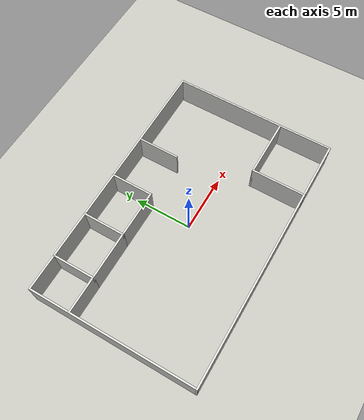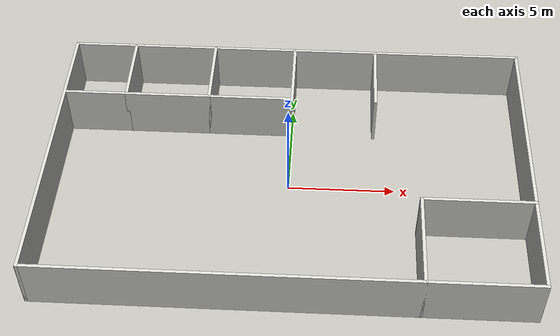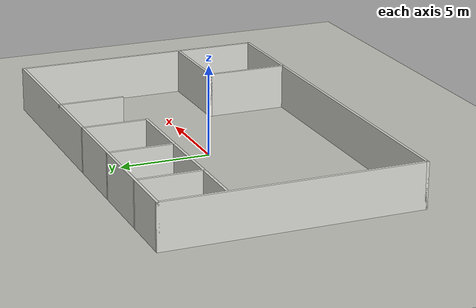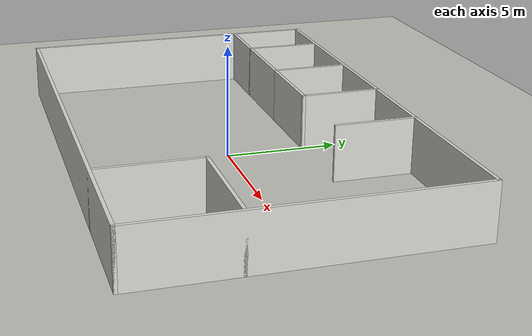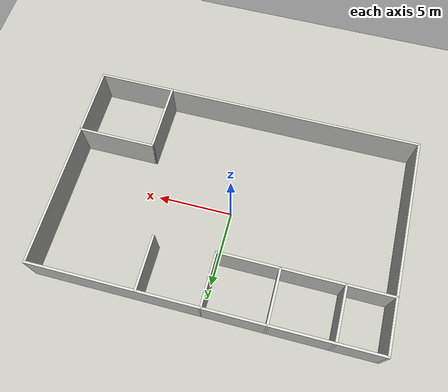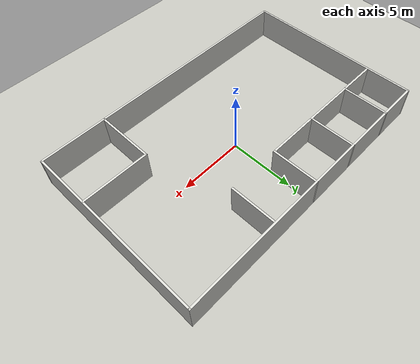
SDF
<sdf version="1.9">
 <world name="factory">
  <physics name="1ms" type="ignored">
   <max_step_size>0.001</max_step_size>
   <real_time_factor>1.0</real_time_factor>
  </physics>
  <plugin filename="ignition-gazebo-physics-system" name="ignition::gazebo::systems::Physics"/>
  <plugin filename="ignition-gazebo-user-commands-system" name="ignition::gazebo::systems::UserCommands"/>
  <plugin filename="ignition-gazebo-scene-broadcaster-system" name="ignition::gazebo::systems::SceneBroadcaster"/>
  <plugin filename="ignition-gazebo-sensors-system" name="ignition::gazebo::systems::Sensors">
   <render_engine>ogre2</render_engine>
  </plugin>
  <plugin filename="ignition-gazebo-imu-system" name="ignition::gazebo::systems::Imu"/>
  <scene><ambient>0.6 0.6 0.6 1</ambient><background>0.7 0.75 0.8 1</background><shadows>true</shadows></scene>
  <light type="directional" name="sun">
   <pose>0 0 10 0 0 0</pose>
   <diffuse>1 1 1 1</diffuse>
   <specular>0.4 0.4 0.4 1</specular>
   <attenuation>
    <range>1000</range>
    <constant>0.9</constant>
    <linear>0.01</linear>
    <quadratic>0.001</quadratic>
   </attenuation>
   <direction>-0.5 0.1 -0.9</direction>
  </light>
  <model name="ground_plane">
   <static>true</static>
   <link name="link">
    <collision name="collision">
     <geometry><plane><normal>0 0 1</normal><size>60 60</size></plane></geometry>
     <surface><friction><ode><mu>1.0</mu><mu2>1.0</mu2></ode></friction></surface>
    </collision>
    <visual name="visual">
     <geometry><plane><normal>0 0 1</normal><size>60 60</size></plane></geometry>
     <material><ambient>0.75 0.75 0.72 1</ambient><diffuse>0.75 0.75 0.72 1</diffuse></material>
    </visual>
   </link>
  </model>
  <model name="walls">
   <static>true</static>
   <link name="wall_0">
    <pose>0.0000 -7.0000 1.2500 0 0 0.000000</pose>
    <collision name="collision"><geometry><box><size>22.1500 0.15 2.5</size></box></geometry></collision>
    <visual name="visual">
     <geometry><box><size>22.1500 0.15 2.5</size></box></geometry>
     <material><ambient>0.85 0.85 0.83 1</ambient><diffuse>0.85 0.85 0.83 1</diffuse></material>
    </visual>
   </link>
   <link name="wall_1">
    <pose>11.0000 0.0000 1.2500 0 0 1.570796</pose>
    <collision name="collision"><geometry><box><size>14.1500 0.15 2.5</size></box></geometry></collision>
    <visual name="visual">
     <geometry><box><size>14.1500 0.15 2.5</size></box></geometry>
     <material><ambient>0.85 0.85 0.83 1</ambient><diffuse>0.85 0.85 0.83 1</diffuse></material>
    </visual>
   </link>
   <link name="wall_2">
    <pose>0.0000 7.0000 1.2500 0 0 3.141593</pose>
    <collision name="collision"><geometry><box><size>22.1500 0.15 2.5</size></box></geometry></collision>
    <visual name="visual">
     <geometry><box><size>22.1500 0.15 2.5</size></box></geometry>
     <material><ambient>0.85 0.85 0.83 1</ambient><diffuse>0.85 0.85 0.83 1</diffuse></material>
    </visual>
   </link>
   <link name="wall_3">
    <pose>-11.0000 0.0000 1.2500 0 0 -1.570796</pose>
    <collision name="collision"><geometry><box><size>14.1500 0.15 2.5</size></box></geometry></collision>
    <visual name="visual">
     <geometry><box><size>14.1500 0.15 2.5</size></box></geometry>
     <material><ambient>0.85 0.85 0.83 1</ambient><diffuse>0.85 0.85 0.83 1</diffuse></material>
    </visual>
   </link>
   <link name="wall_4">
    <pose>-8.0000 5.2500 1.2500 0 0 -1.570796</pose>
    <collision name="collision"><geometry><box><size>3.6500 0.15 2.5</size></box></geometry></collision>
    <visual name="visual">
     <geometry><box><size>3.6500 0.15 2.5</size></box></geometry>
     <material><ambient>0.85 0.85 0.83 1</ambient><diffuse>0.85 0.85 0.83 1</diffuse></material>
    </visual>
   </link>
   <link name="wall_5">
    <pose>-4.0000 5.2500 1.2500 0 0 -1.570796</pose>
    <collision name="collision"><geometry><box><size>3.6500 0.15 2.5</size></box></geometry></collision>
    <visual name="visual">
     <geometry><box><size>3.6500 0.15 2.5</size></box></geometry>
     <material><ambient>0.85 0.85 0.83 1</ambient><diffuse>0.85 0.85 0.83 1</diffuse></material>
    </visual>
   </link>
   <link name="wall_6">
    <pose>0.0000 5.2500 1.2500 0 0 -1.570796</pose>
    <collision name="collision"><geometry><box><size>3.6500 0.15 2.5</size></box></geometry></collision>
    <visual name="visual">
     <geometry><box><size>3.6500 0.15 2.5</size></box></geometry>
     <material><ambient>0.85 0.85 0.83 1</ambient><diffuse>0.85 0.85 0.83 1</diffuse></material>
    </visual>
   </link>
   <link name="wall_7">
    <pose>4.0000 5.2500 1.2500 0 0 -1.570796</pose>
    <collision name="collision"><geometry><box><size>3.6500 0.15 2.5</size></box></geometry></collision>
    <visual name="visual">
     <geometry><box><size>3.6500 0.15 2.5</size></box></geometry>
     <material><ambient>0.85 0.85 0.83 1</ambient><diffuse>0.85 0.85 0.83 1</diffuse></material>
    </visual>
   </link>
   <link name="wall_8">
    <pose>-9.5000 3.5000 1.2500 0 0 0.000000</pose>
    <collision name="collision"><geometry><box><size>3.1500 0.15 2.5</size></box></geometry></collision>
    <visual name="visual">
     <geometry><box><size>3.1500 0.15 2.5</size></box></geometry>
     <material><ambient>0.85 0.85 0.83 1</ambient><diffuse>0.85 0.85 0.83 1</diffuse></material>
    </visual>
   </link>
   <link name="wall_9">
    <pose>-6.0000 3.5000 1.2500 0 0 0.000000</pose>
    <collision name="collision"><geometry><box><size>4.1500 0.15 2.5</size></box></geometry></collision>
    <visual name="visual">
     <geometry><box><size>4.1500 0.15 2.5</size></box></geometry>
     <material><ambient>0.85 0.85 0.83 1</ambient><diffuse>0.85 0.85 0.83 1</diffuse></material>
    </visual>
   </link>
   <link name="wall_10">
    <pose>-2.0000 3.5000 1.2500 0 0 0.000000</pose>
    <collision name="collision"><geometry><box><size>4.1500 0.15 2.5</size></box></geometry></collision>
    <visual name="visual">
     <geometry><box><size>4.1500 0.15 2.5</size></box></geometry>
     <material><ambient>0.85 0.85 0.83 1</ambient><diffuse>0.85 0.85 0.83 1</diffuse></material>
    </visual>
   </link>
   <link name="wall_11">
    <pose>6.0000 -4.7500 1.2500 0 0 1.570796</pose>
    <collision name="collision"><geometry><box><size>4.6500 0.15 2.5</size></box></geometry></collision>
    <visual name="visual">
     <geometry><box><size>4.6500 0.15 2.5</size></box></geometry>
     <material><ambient>0.85 0.85 0.83 1</ambient><diffuse>0.85 0.85 0.83 1</diffuse></material>
    </visual>
   </link>
   <link name="wall_12">
    <pose>8.5000 -2.5000 1.2500 0 0 0.000000</pose>
    <collision name="collision"><geometry><box><size>5.1500 0.15 2.5</size></box></geometry></collision>
    <visual name="visual">
     <geometry><box><size>5.1500 0.15 2.5</size></box></geometry>
     <material><ambient>0.85 0.85 0.83 1</ambient><diffuse>0.85 0.85 0.83 1</diffuse></material>
    </visual>
   </link>
  </model>
 </world>
</sdf>
